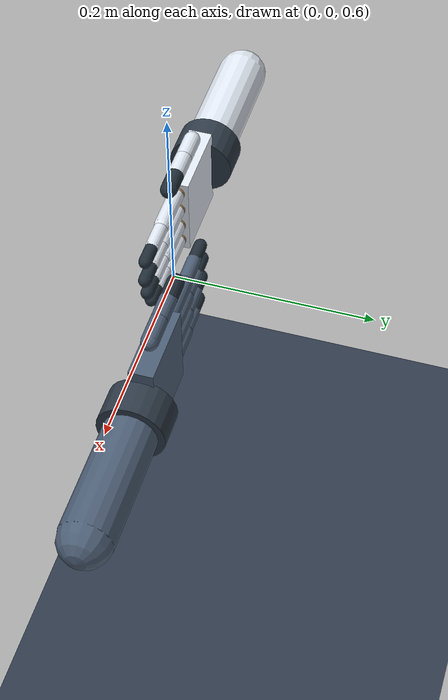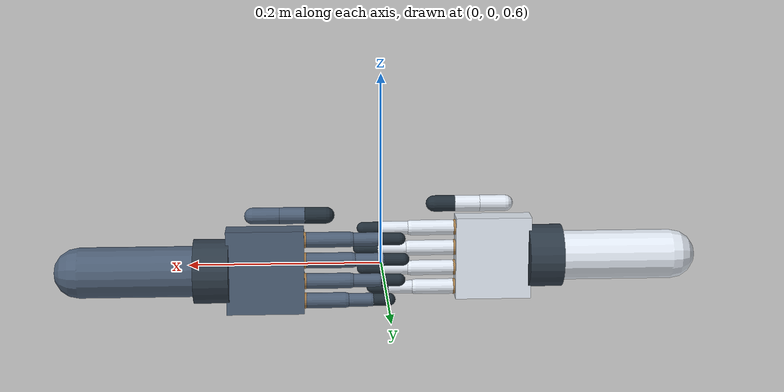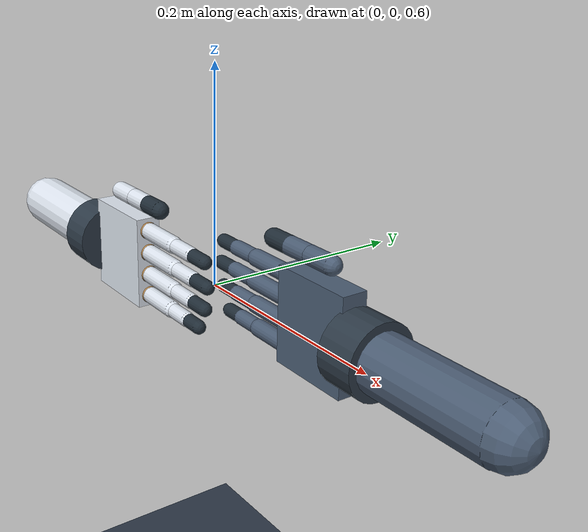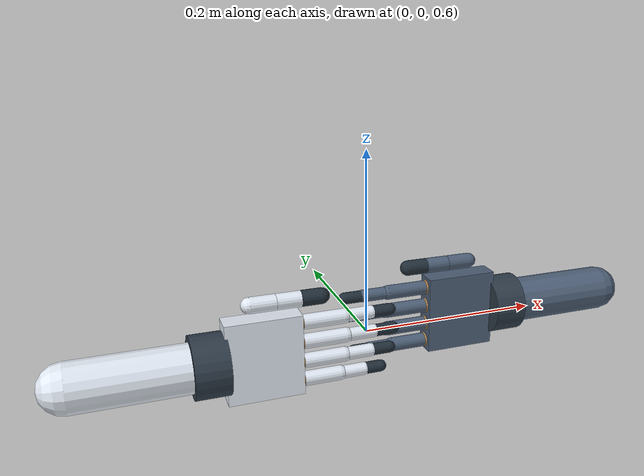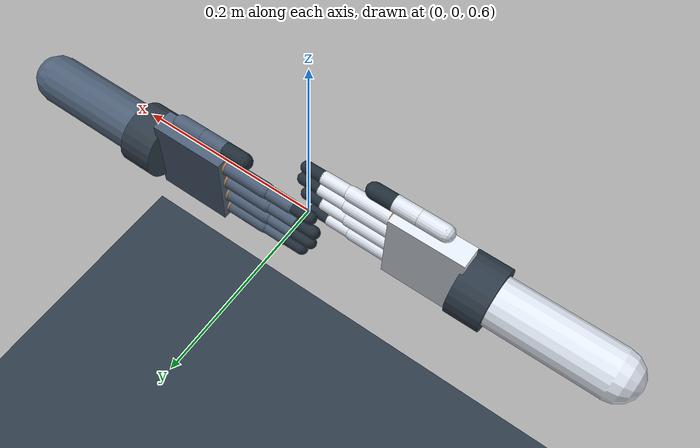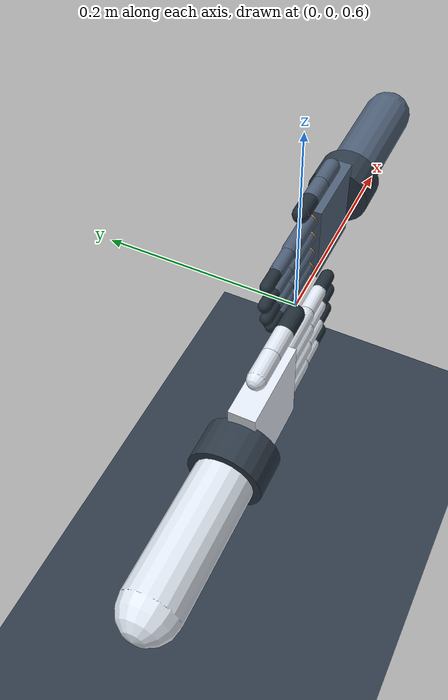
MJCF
<mujoco model="gravity_verified_handshake_v6">
  <compiler angle="radian" autolimits="true" />
  <option timestep=".002" gravity="0 0 -9.81" integrator="implicitfast" cone="elliptic" solver="Newton" iterations="100" tolerance="1e-10" />
  <visual>
    <global offwidth="1280" offheight="720" />
    <quality shadowsize="2048" />
    <headlight ambient=".35 .35 .35" diffuse=".7 .7 .7" />
  </visual>
  <default>
    <joint damping=".035" armature=".0002" limited="true" />
    <geom friction="1.0 .003 .0001" condim="4" solref=".012 1" solimp=".95 .99 .001" density="650" />
  </default>
  <asset>
    <texture name="floor_tex" type="2d" builtin="checker" width="512" height="512" rgb1=".16 .20 .26" rgb2=".20 .25 .31" />
    <material name="floor_mat" texture="floor_tex" texrepeat="8 8" reflectance=".12" />
  </asset>
  <worldbody>
    <light pos="-.5 -1 2" dir=".2 .4 -1" diffuse=".8 .8 .8" />
    <light pos=".6 1 1.8" dir="-.2 -.5 -1" diffuse=".6 .6 .6" />
    <geom name="floor" type="plane" size="2 2 .1" material="floor_mat" contype="4" conaffinity="3" />
    <body name="a_wrist" pos="-0.16 -0.022 .60" quat="1 0 0 0">
      <joint name="a_wrist_x" type="slide" axis="1 0 0" range="-.02 .12" damping="18" armature=".1" />
      <joint name="a_wrist_y" type="slide" axis="0 1 0" range="-.025 .025" damping="18" armature=".1" />
      <joint name="a_wrist_z" type="slide" axis="0 0 1" range="-.06 .06" damping="18" armature=".1" />
      <geom name="a_palm" type="box" pos=".040 0 0" size=".040 .012 .044" rgba=".88 .91 .95 1" contype="1" conaffinity="6" mass=".20" />
      <geom name="a_forearm" type="capsule" fromto="-.15 0 0 -.025 0 0" size=".026" rgba=".88 .91 .95 1" contype="0" conaffinity="0" mass=".25" />
      <geom name="a_wrist_cuff" type="cylinder" pos="-.015 0 0" euler="0 1.57079632679 0" size=".033 .018" rgba=".18 .23 .28 1" contype="0" conaffinity="0" mass=".08" />
      <body name="a_index_mcp_body" pos=".080 0 0.032">
        <joint name="a_index_mcp" type="hinge" axis="0 0 1" range="-.15 1.65" />
        <geom name="a_index_mcp_geom" type="capsule" fromto="0 0 0 0.04704 0 0" size="0.008" rgba=".88 .91 .95 1" contype="1" conaffinity="6" mass=".018" />
        <geom type="sphere" size="0.008320000000000001" rgba=".65 .49 .29 1" contype="0" conaffinity="0" mass=".001" />
        <body name="a_index_pip_body" pos="0.04704 0 0">
          <joint name="a_index_pip" type="hinge" axis="0 0 1" range="-.15 1.65" />
          <geom name="a_index_pip_geom" type="capsule" fromto="0 0 0 0.029759999999999998 0 0" size="0.007" rgba=".88 .91 .95 1" contype="1" conaffinity="6" mass=".018" />
          <geom type="sphere" size="0.00728" rgba=".65 .49 .29 1" contype="0" conaffinity="0" mass=".001" />
          <body name="a_index_dip_body" pos="0.029759999999999998 0 0">
            <joint name="a_index_dip" type="hinge" axis="0 0 1" range="-.15 1.65" />
            <geom name="a_index_dip_geom" type="capsule" fromto="0 0 0 0.021119999999999996 0 0" size="0.0065" rgba=".13 .18 .22 1" contype="1" conaffinity="6" mass=".018" />
            <geom type="sphere" size="0.0067599999999999995" rgba=".65 .49 .29 1" contype="0" conaffinity="0" mass=".001" />
          </body>
        </body>
      </body>
      <body name="a_middle_mcp_body" pos=".080 0 0.01">
        <joint name="a_middle_mcp" type="hinge" axis="0 0 1" range="-.15 1.65" />
        <geom name="a_middle_mcp_geom" type="capsule" fromto="0 0 0 0.049 0 0" size="0.008" rgba=".88 .91 .95 1" contype="1" conaffinity="6" mass=".018" />
        <geom type="sphere" size="0.008320000000000001" rgba=".65 .49 .29 1" contype="0" conaffinity="0" mass=".001" />
        <body name="a_middle_pip_body" pos="0.049 0 0">
          <joint name="a_middle_pip" type="hinge" axis="0 0 1" range="-.15 1.65" />
          <geom name="a_middle_pip_geom" type="capsule" fromto="0 0 0 0.031 0 0" size="0.007" rgba=".88 .91 .95 1" contype="1" conaffinity="6" mass=".018" />
          <geom type="sphere" size="0.00728" rgba=".65 .49 .29 1" contype="0" conaffinity="0" mass=".001" />
          <body name="a_middle_dip_body" pos="0.031 0 0">
            <joint name="a_middle_dip" type="hinge" axis="0 0 1" range="-.15 1.65" />
            <geom name="a_middle_dip_geom" type="capsule" fromto="0 0 0 0.022 0 0" size="0.0065" rgba=".13 .18 .22 1" contype="1" conaffinity="6" mass=".018" />
            <geom type="sphere" size="0.0067599999999999995" rgba=".65 .49 .29 1" contype="0" conaffinity="0" mass=".001" />
          </body>
        </body>
      </body>
      <body name="a_ring_mcp_body" pos=".080 0 -0.012">
        <joint name="a_ring_mcp" type="hinge" axis="0 0 1" range="-.15 1.65" />
        <geom name="a_ring_mcp_geom" type="capsule" fromto="0 0 0 0.04704 0 0" size="0.008" rgba=".88 .91 .95 1" contype="1" conaffinity="6" mass=".018" />
        <geom type="sphere" size="0.008320000000000001" rgba=".65 .49 .29 1" contype="0" conaffinity="0" mass=".001" />
        <body name="a_ring_pip_body" pos="0.04704 0 0">
          <joint name="a_ring_pip" type="hinge" axis="0 0 1" range="-.15 1.65" />
          <geom name="a_ring_pip_geom" type="capsule" fromto="0 0 0 0.029759999999999998 0 0" size="0.007" rgba=".88 .91 .95 1" contype="1" conaffinity="6" mass=".018" />
          <geom type="sphere" size="0.00728" rgba=".65 .49 .29 1" contype="0" conaffinity="0" mass=".001" />
          <body name="a_ring_dip_body" pos="0.029759999999999998 0 0">
            <joint name="a_ring_dip" type="hinge" axis="0 0 1" range="-.15 1.65" />
            <geom name="a_ring_dip_geom" type="capsule" fromto="0 0 0 0.021119999999999996 0 0" size="0.0065" rgba=".13 .18 .22 1" contype="1" conaffinity="6" mass=".018" />
            <geom type="sphere" size="0.0067599999999999995" rgba=".65 .49 .29 1" contype="0" conaffinity="0" mass=".001" />
          </body>
        </body>
      </body>
      <body name="a_little_mcp_body" pos=".080 0 -0.033">
        <joint name="a_little_mcp" type="hinge" axis="0 0 1" range="-.15 1.65" />
        <geom name="a_little_mcp_geom" type="capsule" fromto="0 0 0 0.042140000000000004 0 0" size="0.008" rgba=".88 .91 .95 1" contype="1" conaffinity="6" mass=".018" />
        <geom type="sphere" size="0.008320000000000001" rgba=".65 .49 .29 1" contype="0" conaffinity="0" mass=".001" />
        <body name="a_little_pip_body" pos="0.042140000000000004 0 0">
          <joint name="a_little_pip" type="hinge" axis="0 0 1" range="-.15 1.65" />
          <geom name="a_little_pip_geom" type="capsule" fromto="0 0 0 0.02666 0 0" size="0.007" rgba=".88 .91 .95 1" contype="1" conaffinity="6" mass=".018" />
          <geom type="sphere" size="0.00728" rgba=".65 .49 .29 1" contype="0" conaffinity="0" mass=".001" />
          <body name="a_little_dip_body" pos="0.02666 0 0">
            <joint name="a_little_dip" type="hinge" axis="0 0 1" range="-.15 1.65" />
            <geom name="a_little_dip_geom" type="capsule" fromto="0 0 0 0.01892 0 0" size="0.0065" rgba=".13 .18 .22 1" contype="1" conaffinity="6" mass=".018" />
            <geom type="sphere" size="0.0067599999999999995" rgba=".65 .49 .29 1" contype="0" conaffinity="0" mass=".001" />
          </body>
        </body>
      </body>
      <body name="a_thumb_cmc_body" pos=".028 0 .058">
        <joint name="a_thumb_cmc" type="hinge" axis="0 0 1" range="-.3 1.4" />
        <geom name="a_thumb_cmc_geom" type="capsule" fromto="0 0 0 0.027 0 0" size=".0085" rgba=".88 .91 .95 1" contype="1" conaffinity="6" mass=".025" />
        <body name="a_thumb_mcp_body" pos="0.027 0 0">
          <joint name="a_thumb_mcp" type="hinge" axis="0 1 0" range="-.3 1.4" />
          <geom name="a_thumb_mcp_geom" type="capsule" fromto="0 0 0 0.026 0 0" size=".0085" rgba=".88 .91 .95 1" contype="1" conaffinity="6" mass=".025" />
          <body name="a_thumb_ip_body" pos="0.026 0 0">
            <joint name="a_thumb_ip" type="hinge" axis="0 1 0" range="-.3 1.4" />
            <geom name="a_thumb_ip_geom" type="capsule" fromto="0 0 0 0.022 0 0" size=".0085" rgba=".13 .18 .22 1" contype="1" conaffinity="6" mass=".025" />
          </body>
        </body>
      </body>
    </body>
    <body name="b_wrist" pos="0.16 0.022 .60" quat="0 0 0 1">
      <joint name="b_wrist_x" type="slide" axis="1 0 0" range="-.02 .12" damping="18" armature=".1" />
      <joint name="b_wrist_y" type="slide" axis="0 1 0" range="-.025 .025" damping="18" armature=".1" />
      <joint name="b_wrist_z" type="slide" axis="0 0 1" range="-.06 .06" damping="18" armature=".1" />
      <geom name="b_palm" type="box" pos=".040 0 0" size=".040 .012 .044" rgba=".30 .37 .46 1" contype="2" conaffinity="5" mass=".20" />
      <geom name="b_forearm" type="capsule" fromto="-.15 0 0 -.025 0 0" size=".026" rgba=".30 .37 .46 1" contype="0" conaffinity="0" mass=".25" />
      <geom name="b_wrist_cuff" type="cylinder" pos="-.015 0 0" euler="0 1.57079632679 0" size=".033 .018" rgba=".18 .23 .28 1" contype="0" conaffinity="0" mass=".08" />
      <body name="b_index_mcp_body" pos=".080 0 0.032">
        <joint name="b_index_mcp" type="hinge" axis="0 0 1" range="-.15 1.65" />
        <geom name="b_index_mcp_geom" type="capsule" fromto="0 0 0 0.04704 0 0" size="0.008" rgba=".30 .37 .46 1" contype="2" conaffinity="5" mass=".018" />
        <geom type="sphere" size="0.008320000000000001" rgba=".65 .49 .29 1" contype="0" conaffinity="0" mass=".001" />
        <body name="b_index_pip_body" pos="0.04704 0 0">
          <joint name="b_index_pip" type="hinge" axis="0 0 1" range="-.15 1.65" />
          <geom name="b_index_pip_geom" type="capsule" fromto="0 0 0 0.029759999999999998 0 0" size="0.007" rgba=".30 .37 .46 1" contype="2" conaffinity="5" mass=".018" />
          <geom type="sphere" size="0.00728" rgba=".65 .49 .29 1" contype="0" conaffinity="0" mass=".001" />
          <body name="b_index_dip_body" pos="0.029759999999999998 0 0">
            <joint name="b_index_dip" type="hinge" axis="0 0 1" range="-.15 1.65" />
            <geom name="b_index_dip_geom" type="capsule" fromto="0 0 0 0.021119999999999996 0 0" size="0.0065" rgba=".13 .18 .22 1" contype="2" conaffinity="5" mass=".018" />
            <geom type="sphere" size="0.0067599999999999995" rgba=".65 .49 .29 1" contype="0" conaffinity="0" mass=".001" />
          </body>
        </body>
      </body>
      <body name="b_middle_mcp_body" pos=".080 0 0.01">
        <joint name="b_middle_mcp" type="hinge" axis="0 0 1" range="-.15 1.65" />
        <geom name="b_middle_mcp_geom" type="capsule" fromto="0 0 0 0.049 0 0" size="0.008" rgba=".30 .37 .46 1" contype="2" conaffinity="5" mass=".018" />
        <geom type="sphere" size="0.008320000000000001" rgba=".65 .49 .29 1" contype="0" conaffinity="0" mass=".001" />
        <body name="b_middle_pip_body" pos="0.049 0 0">
          <joint name="b_middle_pip" type="hinge" axis="0 0 1" range="-.15 1.65" />
          <geom name="b_middle_pip_geom" type="capsule" fromto="0 0 0 0.031 0 0" size="0.007" rgba=".30 .37 .46 1" contype="2" conaffinity="5" mass=".018" />
          <geom type="sphere" size="0.00728" rgba=".65 .49 .29 1" contype="0" conaffinity="0" mass=".001" />
          <body name="b_middle_dip_body" pos="0.031 0 0">
            <joint name="b_middle_dip" type="hinge" axis="0 0 1" range="-.15 1.65" />
            <geom name="b_middle_dip_geom" type="capsule" fromto="0 0 0 0.022 0 0" size="0.0065" rgba=".13 .18 .22 1" contype="2" conaffinity="5" mass=".018" />
            <geom type="sphere" size="0.0067599999999999995" rgba=".65 .49 .29 1" contype="0" conaffinity="0" mass=".001" />
          </body>
        </body>
      </body>
      <body name="b_ring_mcp_body" pos=".080 0 -0.012">
        <joint name="b_ring_mcp" type="hinge" axis="0 0 1" range="-.15 1.65" />
        <geom name="b_ring_mcp_geom" type="capsule" fromto="0 0 0 0.04704 0 0" size="0.008" rgba=".30 .37 .46 1" contype="2" conaffinity="5" mass=".018" />
        <geom type="sphere" size="0.008320000000000001" rgba=".65 .49 .29 1" contype="0" conaffinity="0" mass=".001" />
        <body name="b_ring_pip_body" pos="0.04704 0 0">
          <joint name="b_ring_pip" type="hinge" axis="0 0 1" range="-.15 1.65" />
          <geom name="b_ring_pip_geom" type="capsule" fromto="0 0 0 0.029759999999999998 0 0" size="0.007" rgba=".30 .37 .46 1" contype="2" conaffinity="5" mass=".018" />
          <geom type="sphere" size="0.00728" rgba=".65 .49 .29 1" contype="0" conaffinity="0" mass=".001" />
          <body name="b_ring_dip_body" pos="0.029759999999999998 0 0">
            <joint name="b_ring_dip" type="hinge" axis="0 0 1" range="-.15 1.65" />
            <geom name="b_ring_dip_geom" type="capsule" fromto="0 0 0 0.021119999999999996 0 0" size="0.0065" rgba=".13 .18 .22 1" contype="2" conaffinity="5" mass=".018" />
            <geom type="sphere" size="0.0067599999999999995" rgba=".65 .49 .29 1" contype="0" conaffinity="0" mass=".001" />
          </body>
        </body>
      </body>
      <body name="b_little_mcp_body" pos=".080 0 -0.033">
        <joint name="b_little_mcp" type="hinge" axis="0 0 1" range="-.15 1.65" />
        <geom name="b_little_mcp_geom" type="capsule" fromto="0 0 0 0.042140000000000004 0 0" size="0.008" rgba=".30 .37 .46 1" contype="2" conaffinity="5" mass=".018" />
        <geom type="sphere" size="0.008320000000000001" rgba=".65 .49 .29 1" contype="0" conaffinity="0" mass=".001" />
        <body name="b_little_pip_body" pos="0.042140000000000004 0 0">
          <joint name="b_little_pip" type="hinge" axis="0 0 1" range="-.15 1.65" />
          <geom name="b_little_pip_geom" type="capsule" fromto="0 0 0 0.02666 0 0" size="0.007" rgba=".30 .37 .46 1" contype="2" conaffinity="5" mass=".018" />
          <geom type="sphere" size="0.00728" rgba=".65 .49 .29 1" contype="0" conaffinity="0" mass=".001" />
          <body name="b_little_dip_body" pos="0.02666 0 0">
            <joint name="b_little_dip" type="hinge" axis="0 0 1" range="-.15 1.65" />
            <geom name="b_little_dip_geom" type="capsule" fromto="0 0 0 0.01892 0 0" size="0.0065" rgba=".13 .18 .22 1" contype="2" conaffinity="5" mass=".018" />
            <geom type="sphere" size="0.0067599999999999995" rgba=".65 .49 .29 1" contype="0" conaffinity="0" mass=".001" />
          </body>
        </body>
      </body>
      <body name="b_thumb_cmc_body" pos=".028 0 .058">
        <joint name="b_thumb_cmc" type="hinge" axis="0 0 1" range="-.3 1.4" />
        <geom name="b_thumb_cmc_geom" type="capsule" fromto="0 0 0 0.027 0 0" size=".0085" rgba=".30 .37 .46 1" contype="2" conaffinity="5" mass=".025" />
        <body name="b_thumb_mcp_body" pos="0.027 0 0">
          <joint name="b_thumb_mcp" type="hinge" axis="0 1 0" range="-.3 1.4" />
          <geom name="b_thumb_mcp_geom" type="capsule" fromto="0 0 0 0.026 0 0" size=".0085" rgba=".30 .37 .46 1" contype="2" conaffinity="5" mass=".025" />
          <body name="b_thumb_ip_body" pos="0.026 0 0">
            <joint name="b_thumb_ip" type="hinge" axis="0 1 0" range="-.3 1.4" />
            <geom name="b_thumb_ip_geom" type="capsule" fromto="0 0 0 0.022 0 0" size=".0085" rgba=".13 .18 .22 1" contype="2" conaffinity="5" mass=".025" />
          </body>
        </body>
      </body>
    </body>
  </worldbody>
  <actuator>
    <position name="a_wrist_x" joint="a_wrist_x" kp="1200" kv="55" ctrlrange="-.02 .12" forcerange="-100 100" />
    <position name="a_wrist_y" joint="a_wrist_y" kp="1200" kv="55" ctrlrange="-.025 .025" forcerange="-100 100" />
    <position name="a_wrist_z" joint="a_wrist_z" kp="1200" kv="55" ctrlrange="-.06 .06" forcerange="-100 100" />
    <position name="a_index_mcp" joint="a_index_mcp" kp="1.2" kv=".045" ctrlrange="-.15 1.65" forcerange="-.35 .35" />
    <position name="a_index_pip" joint="a_index_pip" kp="1.2" kv=".045" ctrlrange="-.15 1.65" forcerange="-.35 .35" />
    <position name="a_index_dip" joint="a_index_dip" kp="1.2" kv=".045" ctrlrange="-.15 1.65" forcerange="-.35 .35" />
    <position name="a_middle_mcp" joint="a_middle_mcp" kp="1.2" kv=".045" ctrlrange="-.15 1.65" forcerange="-.35 .35" />
    <position name="a_middle_pip" joint="a_middle_pip" kp="1.2" kv=".045" ctrlrange="-.15 1.65" forcerange="-.35 .35" />
    <position name="a_middle_dip" joint="a_middle_dip" kp="1.2" kv=".045" ctrlrange="-.15 1.65" forcerange="-.35 .35" />
    <position name="a_ring_mcp" joint="a_ring_mcp" kp="1.2" kv=".045" ctrlrange="-.15 1.65" forcerange="-.35 .35" />
    <position name="a_ring_pip" joint="a_ring_pip" kp="1.2" kv=".045" ctrlrange="-.15 1.65" forcerange="-.35 .35" />
    <position name="a_ring_dip" joint="a_ring_dip" kp="1.2" kv=".045" ctrlrange="-.15 1.65" forcerange="-.35 .35" />
    <position name="a_little_mcp" joint="a_little_mcp" kp="1.2" kv=".045" ctrlrange="-.15 1.65" forcerange="-.35 .35" />
    <position name="a_little_pip" joint="a_little_pip" kp="1.2" kv=".045" ctrlrange="-.15 1.65" forcerange="-.35 .35" />
    <position name="a_little_dip" joint="a_little_dip" kp="1.2" kv=".045" ctrlrange="-.15 1.65" forcerange="-.35 .35" />
    <position name="a_thumb_cmc" joint="a_thumb_cmc" kp="1.0" kv=".04" ctrlrange="-.3 1.4" forcerange="-.25 .25" />
    <position name="a_thumb_mcp" joint="a_thumb_mcp" kp="1.0" kv=".04" ctrlrange="-.3 1.4" forcerange="-.25 .25" />
    <position name="a_thumb_ip" joint="a_thumb_ip" kp="1.0" kv=".04" ctrlrange="-.3 1.4" forcerange="-.25 .25" />
    <position name="b_wrist_x" joint="b_wrist_x" kp="1200" kv="55" ctrlrange="-.02 .12" forcerange="-100 100" />
    <position name="b_wrist_y" joint="b_wrist_y" kp="1200" kv="55" ctrlrange="-.025 .025" forcerange="-100 100" />
    <position name="b_wrist_z" joint="b_wrist_z" kp="1200" kv="55" ctrlrange="-.06 .06" forcerange="-100 100" />
    <position name="b_index_mcp" joint="b_index_mcp" kp="1.2" kv=".045" ctrlrange="-.15 1.65" forcerange="-.35 .35" />
    <position name="b_index_pip" joint="b_index_pip" kp="1.2" kv=".045" ctrlrange="-.15 1.65" forcerange="-.35 .35" />
    <position name="b_index_dip" joint="b_index_dip" kp="1.2" kv=".045" ctrlrange="-.15 1.65" forcerange="-.35 .35" />
    <position name="b_middle_mcp" joint="b_middle_mcp" kp="1.2" kv=".045" ctrlrange="-.15 1.65" forcerange="-.35 .35" />
    <position name="b_middle_pip" joint="b_middle_pip" kp="1.2" kv=".045" ctrlrange="-.15 1.65" forcerange="-.35 .35" />
    <position name="b_middle_dip" joint="b_middle_dip" kp="1.2" kv=".045" ctrlrange="-.15 1.65" forcerange="-.35 .35" />
    <position name="b_ring_mcp" joint="b_ring_mcp" kp="1.2" kv=".045" ctrlrange="-.15 1.65" forcerange="-.35 .35" />
    <position name="b_ring_pip" joint="b_ring_pip" kp="1.2" kv=".045" ctrlrange="-.15 1.65" forcerange="-.35 .35" />
    <position name="b_ring_dip" joint="b_ring_dip" kp="1.2" kv=".045" ctrlrange="-.15 1.65" forcerange="-.35 .35" />
    <position name="b_little_mcp" joint="b_little_mcp" kp="1.2" kv=".045" ctrlrange="-.15 1.65" forcerange="-.35 .35" />
    <position name="b_little_pip" joint="b_little_pip" kp="1.2" kv=".045" ctrlrange="-.15 1.65" forcerange="-.35 .35" />
    <position name="b_little_dip" joint="b_little_dip" kp="1.2" kv=".045" ctrlrange="-.15 1.65" forcerange="-.35 .35" />
    <position name="b_thumb_cmc" joint="b_thumb_cmc" kp="1.0" kv=".04" ctrlrange="-.3 1.4" forcerange="-.25 .25" />
    <position name="b_thumb_mcp" joint="b_thumb_mcp" kp="1.0" kv=".04" ctrlrange="-.3 1.4" forcerange="-.25 .25" />
    <position name="b_thumb_ip" joint="b_thumb_ip" kp="1.0" kv=".04" ctrlrange="-.3 1.4" forcerange="-.25 .25" />
  </actuator>
</mujoco>
